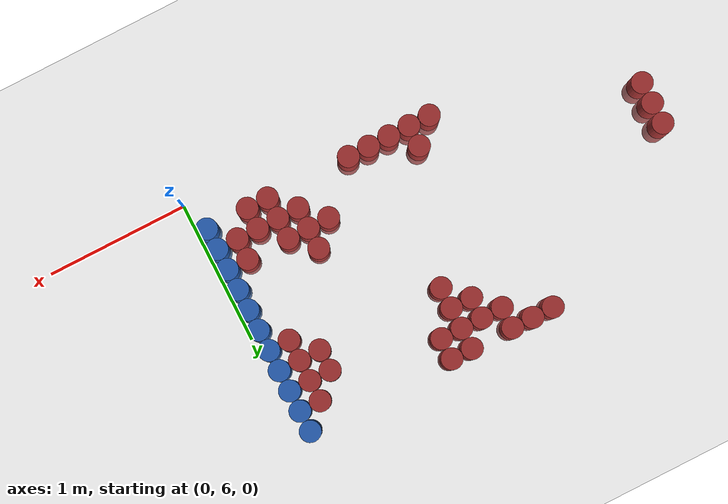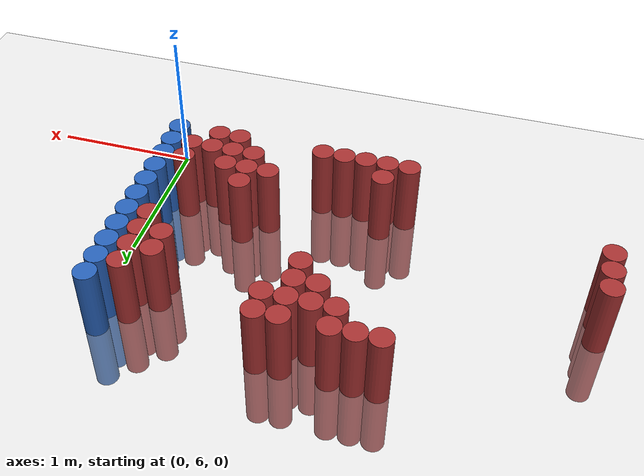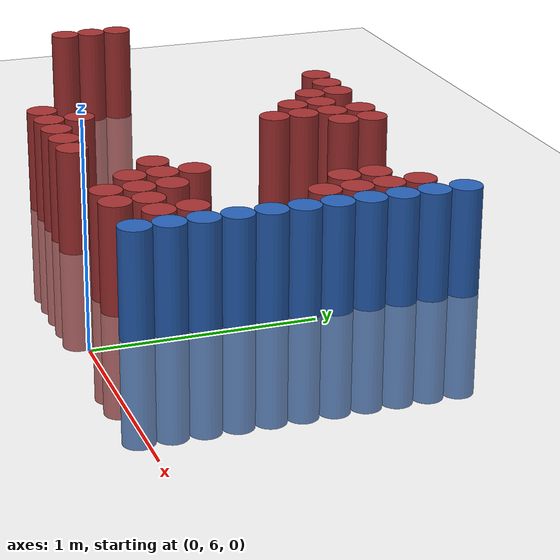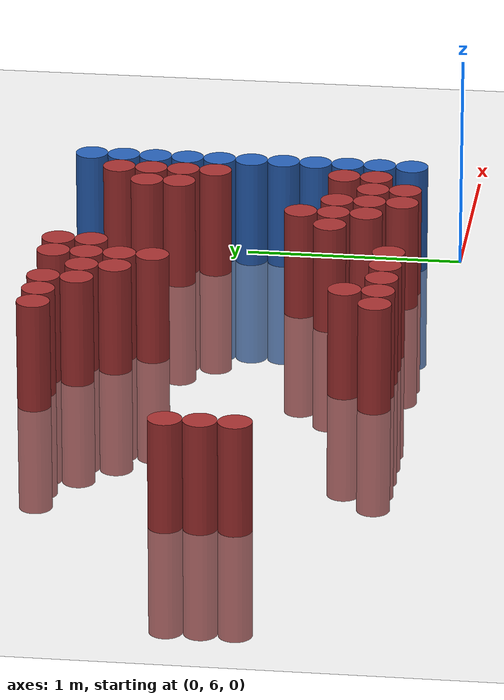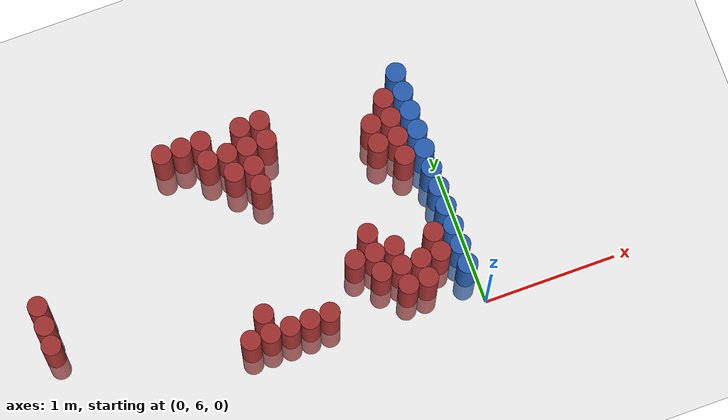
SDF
<sdf version="1.6">
 <world name="default">
  <model name="ground_plane">
   <static>1</static>
   <link name="link">
    <collision name="collision">
     <geometry><plane><normal>0 0 1</normal><size>100 100</size></plane></geometry>
     <surface><friction><ode><mu>100</mu><mu2>50</mu2></ode></friction></surface>
    </collision>
    <visual name="visual">
     <cast_shadows>0</cast_shadows>
     <geometry><plane><normal>0 0 1</normal><size>100 100</size></plane></geometry>
     <material>
      <script><uri>file://media/materials/scripts/gazebo.material</uri><name>Gazebo/Grey</name></script>
     </material>
    </visual>
   </link>
  </model>
  <model name="unit_cylinder_165">
   <static>1</static>
   <pose>-3.075000 6.675000 0.000000 0.000000 0.000000 0.000000</pose>
   <link name="link">
    <inertial>
     <mass>1</mass>
     <inertia><ixx>0.145833</ixx><ixy>0</ixy><ixz>0</ixz><iyy>0.145833</iyy><iyz>0</iyz><izz>0.125</izz></inertia>
    </inertial>
    <collision name="collision">
     <geometry><cylinder><radius>0.075000</radius><length>1</length></cylinder></geometry>
    </collision>
    <visual name="visual">
     <geometry><cylinder><radius>0.075000</radius><length>1</length></cylinder></geometry>
     <material>
      <ambient>0.648000 0.192000 0.192000 1</ambient>
      <diffuse>0.648000 0.192000 0.192000 1</diffuse>
     </material>
     <material>
      <script><name>Gazebo/Grey</name><uri>file://media/materials/scripts/gazebo.material</uri></script>
     </material>
    </visual>
   </link>
  </model>
  <model name="unit_cylinder_166">
   <static>1</static>
   <pose>-3.075000 6.825000 0.000000 0.000000 0.000000 0.000000</pose>
   <link name="link">
    <inertial>
     <mass>1</mass>
     <inertia><ixx>0.145833</ixx><ixy>0</ixy><ixz>0</ixz><iyy>0.145833</iyy><iyz>0</iyz><izz>0.125</izz></inertia>
    </inertial>
    <collision name="collision">
     <geometry><cylinder><radius>0.075000</radius><length>1</length></cylinder></geometry>
    </collision>
    <visual name="visual">
     <geometry><cylinder><radius>0.075000</radius><length>1</length></cylinder></geometry>
     <material>
      <ambient>0.648000 0.192000 0.192000 1</ambient>
      <diffuse>0.648000 0.192000 0.192000 1</diffuse>
     </material>
     <material>
      <script><name>Gazebo/Grey</name><uri>file://media/materials/scripts/gazebo.material</uri></script>
     </material>
    </visual>
   </link>
  </model>
  <model name="unit_cylinder_167">
   <static>1</static>
   <pose>-3.075000 6.975000 0.000000 0.000000 0.000000 0.000000</pose>
   <link name="link">
    <inertial>
     <mass>1</mass>
     <inertia><ixx>0.145833</ixx><ixy>0</ixy><ixz>0</ixz><iyy>0.145833</iyy><iyz>0</iyz><izz>0.125</izz></inertia>
    </inertial>
    <collision name="collision">
     <geometry><cylinder><radius>0.075000</radius><length>1</length></cylinder></geometry>
    </collision>
    <visual name="visual">
     <geometry><cylinder><radius>0.075000</radius><length>1</length></cylinder></geometry>
     <material>
      <ambient>0.648000 0.192000 0.192000 1</ambient>
      <diffuse>0.648000 0.192000 0.192000 1</diffuse>
     </material>
     <material>
      <script><name>Gazebo/Grey</name><uri>file://media/materials/scripts/gazebo.material</uri></script>
     </material>
    </visual>
   </link>
  </model>
  <model name="unit_cylinder_176">
   <static>1</static>
   <pose>-1.875000 7.725000 0.000000 0.000000 0.000000 0.000000</pose>
   <link name="link">
    <inertial>
     <mass>1</mass>
     <inertia><ixx>0.145833</ixx><ixy>0</ixy><ixz>0</ixz><iyy>0.145833</iyy><iyz>0</iyz><izz>0.125</izz></inertia>
    </inertial>
    <collision name="collision">
     <geometry><cylinder><radius>0.075000</radius><length>1</length></cylinder></geometry>
    </collision>
    <visual name="visual">
     <geometry><cylinder><radius>0.075000</radius><length>1</length></cylinder></geometry>
     <material>
      <ambient>0.648000 0.192000 0.192000 1</ambient>
      <diffuse>0.648000 0.192000 0.192000 1</diffuse>
     </material>
     <material>
      <script><name>Gazebo/Grey</name><uri>file://media/materials/scripts/gazebo.material</uri></script>
     </material>
    </visual>
   </link>
  </model>
  <model name="unit_cylinder_186">
   <static>1</static>
   <pose>-1.725000 6.225000 0.000000 0.000000 0.000000 0.000000</pose>
   <link name="link">
    <inertial>
     <mass>1</mass>
     <inertia><ixx>0.145833</ixx><ixy>0</ixy><ixz>0</ixz><iyy>0.145833</iyy><iyz>0</iyz><izz>0.125</izz></inertia>
    </inertial>
    <collision name="collision">
     <geometry><cylinder><radius>0.075000</radius><length>1</length></cylinder></geometry>
    </collision>
    <visual name="visual">
     <geometry><cylinder><radius>0.075000</radius><length>1</length></cylinder></geometry>
     <material>
      <ambient>0.648000 0.192000 0.192000 1</ambient>
      <diffuse>0.648000 0.192000 0.192000 1</diffuse>
     </material>
     <material>
      <script><name>Gazebo/Grey</name><uri>file://media/materials/scripts/gazebo.material</uri></script>
     </material>
    </visual>
   </link>
  </model>
  <model name="unit_cylinder_187">
   <static>1</static>
   <pose>-1.725000 7.725000 0.000000 0.000000 0.000000 0.000000</pose>
   <link name="link">
    <inertial>
     <mass>1</mass>
     <inertia><ixx>0.145833</ixx><ixy>0</ixy><ixz>0</ixz><iyy>0.145833</iyy><iyz>0</iyz><izz>0.125</izz></inertia>
    </inertial>
    <collision name="collision">
     <geometry><cylinder><radius>0.075000</radius><length>1</length></cylinder></geometry>
    </collision>
    <visual name="visual">
     <geometry><cylinder><radius>0.075000</radius><length>1</length></cylinder></geometry>
     <material>
      <ambient>0.648000 0.192000 0.192000 1</ambient>
      <diffuse>0.648000 0.192000 0.192000 1</diffuse>
     </material>
     <material>
      <script><name>Gazebo/Grey</name><uri>file://media/materials/scripts/gazebo.material</uri></script>
     </material>
    </visual>
   </link>
  </model>
  <model name="unit_cylinder_193">
   <static>1</static>
   <pose>-1.575000 6.225000 0.000000 0.000000 0.000000 0.000000</pose>
   <link name="link">
    <inertial>
     <mass>1</mass>
     <inertia><ixx>0.145833</ixx><ixy>0</ixy><ixz>0</ixz><iyy>0.145833</iyy><iyz>0</iyz><izz>0.125</izz></inertia>
    </inertial>
    <collision name="collision">
     <geometry><cylinder><radius>0.075000</radius><length>1</length></cylinder></geometry>
    </collision>
    <visual name="visual">
     <geometry><cylinder><radius>0.075000</radius><length>1</length></cylinder></geometry>
     <material>
      <ambient>0.648000 0.192000 0.192000 1</ambient>
      <diffuse>0.648000 0.192000 0.192000 1</diffuse>
     </material>
     <material>
      <script><name>Gazebo/Grey</name><uri>file://media/materials/scripts/gazebo.material</uri></script>
     </material>
    </visual>
   </link>
  </model>
  <model name="unit_cylinder_194">
   <static>1</static>
   <pose>-1.575000 6.375000 0.000000 0.000000 0.000000 0.000000</pose>
   <link name="link">
    <inertial>
     <mass>1</mass>
     <inertia><ixx>0.145833</ixx><ixy>0</ixy><ixz>0</ixz><iyy>0.145833</iyy><iyz>0</iyz><izz>0.125</izz></inertia>
    </inertial>
    <collision name="collision">
     <geometry><cylinder><radius>0.075000</radius><length>1</length></cylinder></geometry>
    </collision>
    <visual name="visual">
     <geometry><cylinder><radius>0.075000</radius><length>1</length></cylinder></geometry>
     <material>
      <ambient>0.648000 0.192000 0.192000 1</ambient>
      <diffuse>0.648000 0.192000 0.192000 1</diffuse>
     </material>
     <material>
      <script><name>Gazebo/Grey</name><uri>file://media/materials/scripts/gazebo.material</uri></script>
     </material>
    </visual>
   </link>
  </model>
  <model name="unit_cylinder_195">
   <static>1</static>
   <pose>-1.575000 7.575000 0.000000 0.000000 0.000000 0.000000</pose>
   <link name="link">
    <inertial>
     <mass>1</mass>
     <inertia><ixx>0.145833</ixx><ixy>0</ixy><ixz>0</ixz><iyy>0.145833</iyy><iyz>0</iyz><izz>0.125</izz></inertia>
    </inertial>
    <collision name="collision">
     <geometry><cylinder><radius>0.075000</radius><length>1</length></cylinder></geometry>
    </collision>
    <visual name="visual">
     <geometry><cylinder><radius>0.075000</radius><length>1</length></cylinder></geometry>
     <material>
      <ambient>0.648000 0.192000 0.192000 1</ambient>
      <diffuse>0.648000 0.192000 0.192000 1</diffuse>
     </material>
     <material>
      <script><name>Gazebo/Grey</name><uri>file://media/materials/scripts/gazebo.material</uri></script>
     </material>
    </visual>
   </link>
  </model>
  <model name="unit_cylinder_196">
   <static>1</static>
   <pose>-1.575000 7.725000 0.000000 0.000000 0.000000 0.000000</pose>
   <link name="link">
    <inertial>
     <mass>1</mass>
     <inertia><ixx>0.145833</ixx><ixy>0</ixy><ixz>0</ixz><iyy>0.145833</iyy><iyz>0</iyz><izz>0.125</izz></inertia>
    </inertial>
    <collision name="collision">
     <geometry><cylinder><radius>0.075000</radius><length>1</length></cylinder></geometry>
    </collision>
    <visual name="visual">
     <geometry><cylinder><radius>0.075000</radius><length>1</length></cylinder></geometry>
     <material>
      <ambient>0.648000 0.192000 0.192000 1</ambient>
      <diffuse>0.648000 0.192000 0.192000 1</diffuse>
     </material>
     <material>
      <script><name>Gazebo/Grey</name><uri>file://media/materials/scripts/gazebo.material</uri></script>
     </material>
    </visual>
   </link>
  </model>
  <model name="unit_cylinder_202">
   <static>1</static>
   <pose>-1.425000 6.225000 0.000000 0.000000 0.000000 0.000000</pose>
   <link name="link">
    <inertial>
     <mass>1</mass>
     <inertia><ixx>0.145833</ixx><ixy>0</ixy><ixz>0</ixz><iyy>0.145833</iyy><iyz>0</iyz><izz>0.125</izz></inertia>
    </inertial>
    <collision name="collision">
     <geometry><cylinder><radius>0.075000</radius><length>1</length></cylinder></geometry>
    </collision>
    <visual name="visual">
     <geometry><cylinder><radius>0.075000</radius><length>1</length></cylinder></geometry>
     <material>
      <ambient>0.648000 0.192000 0.192000 1</ambient>
      <diffuse>0.648000 0.192000 0.192000 1</diffuse>
     </material>
     <material>
      <script><name>Gazebo/Grey</name><uri>file://media/materials/scripts/gazebo.material</uri></script>
     </material>
    </visual>
   </link>
  </model>
  <model name="unit_cylinder_203">
   <static>1</static>
   <pose>-1.425000 7.425000 0.000000 0.000000 0.000000 0.000000</pose>
   <link name="link">
    <inertial>
     <mass>1</mass>
     <inertia><ixx>0.145833</ixx><ixy>0</ixy><ixz>0</ixz><iyy>0.145833</iyy><iyz>0</iyz><izz>0.125</izz></inertia>
    </inertial>
    <collision name="collision">
     <geometry><cylinder><radius>0.075000</radius><length>1</length></cylinder></geometry>
    </collision>
    <visual name="visual">
     <geometry><cylinder><radius>0.075000</radius><length>1</length></cylinder></geometry>
     <material>
      <ambient>0.648000 0.192000 0.192000 1</ambient>
      <diffuse>0.648000 0.192000 0.192000 1</diffuse>
     </material>
     <material>
      <script><name>Gazebo/Grey</name><uri>file://media/materials/scripts/gazebo.material</uri></script>
     </material>
    </visual>
   </link>
  </model>
  <model name="unit_cylinder_204">
   <static>1</static>
   <pose>-1.425000 7.575000 0.000000 0.000000 0.000000 0.000000</pose>
   <link name="link">
    <inertial>
     <mass>1</mass>
     <inertia><ixx>0.145833</ixx><ixy>0</ixy><ixz>0</ixz><iyy>0.145833</iyy><iyz>0</iyz><izz>0.125</izz></inertia>
    </inertial>
    <collision name="collision">
     <geometry><cylinder><radius>0.075000</radius><length>1</length></cylinder></geometry>
    </collision>
    <visual name="visual">
     <geometry><cylinder><radius>0.075000</radius><length>1</length></cylinder></geometry>
     <material>
      <ambient>0.648000 0.192000 0.192000 1</ambient>
      <diffuse>0.648000 0.192000 0.192000 1</diffuse>
     </material>
     <material>
      <script><name>Gazebo/Grey</name><uri>file://media/materials/scripts/gazebo.material</uri></script>
     </material>
    </visual>
   </link>
  </model>
  <model name="unit_cylinder_212">
   <static>1</static>
   <pose>-1.275000 6.225000 0.000000 0.000000 0.000000 0.000000</pose>
   <link name="link">
    <inertial>
     <mass>1</mass>
     <inertia><ixx>0.145833</ixx><ixy>0</ixy><ixz>0</ixz><iyy>0.145833</iyy><iyz>0</iyz><izz>0.125</izz></inertia>
    </inertial>
    <collision name="collision">
     <geometry><cylinder><radius>0.075000</radius><length>1</length></cylinder></geometry>
    </collision>
    <visual name="visual">
     <geometry><cylinder><radius>0.075000</radius><length>1</length></cylinder></geometry>
     <material>
      <ambient>0.648000 0.192000 0.192000 1</ambient>
      <diffuse>0.648000 0.192000 0.192000 1</diffuse>
     </material>
     <material>
      <script><name>Gazebo/Grey</name><uri>file://media/materials/scripts/gazebo.material</uri></script>
     </material>
    </visual>
   </link>
  </model>
  <model name="unit_cylinder_213">
   <static>1</static>
   <pose>-1.275000 7.275000 0.000000 0.000000 0.000000 0.000000</pose>
   <link name="link">
    <inertial>
     <mass>1</mass>
     <inertia><ixx>0.145833</ixx><ixy>0</ixy><ixz>0</ixz><iyy>0.145833</iyy><iyz>0</iyz><izz>0.125</izz></inertia>
    </inertial>
    <collision name="collision">
     <geometry><cylinder><radius>0.075000</radius><length>1</length></cylinder></geometry>
    </collision>
    <visual name="visual">
     <geometry><cylinder><radius>0.075000</radius><length>1</length></cylinder></geometry>
     <material>
      <ambient>0.648000 0.192000 0.192000 1</ambient>
      <diffuse>0.648000 0.192000 0.192000 1</diffuse>
     </material>
     <material>
      <script><name>Gazebo/Grey</name><uri>file://media/materials/scripts/gazebo.material</uri></script>
     </material>
    </visual>
   </link>
  </model>
  <model name="unit_cylinder_214">
   <static>1</static>
   <pose>-1.275000 7.425000 0.000000 0.000000 0.000000 0.000000</pose>
   <link name="link">
    <inertial>
     <mass>1</mass>
     <inertia><ixx>0.145833</ixx><ixy>0</ixy><ixz>0</ixz><iyy>0.145833</iyy><iyz>0</iyz><izz>0.125</izz></inertia>
    </inertial>
    <collision name="collision">
     <geometry><cylinder><radius>0.075000</radius><length>1</length></cylinder></geometry>
    </collision>
    <visual name="visual">
     <geometry><cylinder><radius>0.075000</radius><length>1</length></cylinder></geometry>
     <material>
      <ambient>0.648000 0.192000 0.192000 1</ambient>
      <diffuse>0.648000 0.192000 0.192000 1</diffuse>
     </material>
     <material>
      <script><name>Gazebo/Grey</name><uri>file://media/materials/scripts/gazebo.material</uri></script>
     </material>
    </visual>
   </link>
  </model>
  <model name="unit_cylinder_215">
   <static>1</static>
   <pose>-1.275000 7.575000 0.000000 0.000000 0.000000 0.000000</pose>
   <link name="link">
    <inertial>
     <mass>1</mass>
     <inertia><ixx>0.145833</ixx><ixy>0</ixy><ixz>0</ixz><iyy>0.145833</iyy><iyz>0</iyz><izz>0.125</izz></inertia>
    </inertial>
    <collision name="collision">
     <geometry><cylinder><radius>0.075000</radius><length>1</length></cylinder></geometry>
    </collision>
    <visual name="visual">
     <geometry><cylinder><radius>0.075000</radius><length>1</length></cylinder></geometry>
     <material>
      <ambient>0.648000 0.192000 0.192000 1</ambient>
      <diffuse>0.648000 0.192000 0.192000 1</diffuse>
     </material>
     <material>
      <script><name>Gazebo/Grey</name><uri>file://media/materials/scripts/gazebo.material</uri></script>
     </material>
    </visual>
   </link>
  </model>
  <model name="unit_cylinder_216">
   <static>1</static>
   <pose>-1.275000 7.725000 0.000000 0.000000 0.000000 0.000000</pose>
   <link name="link">
    <inertial>
     <mass>1</mass>
     <inertia><ixx>0.145833</ixx><ixy>0</ixy><ixz>0</ixz><iyy>0.145833</iyy><iyz>0</iyz><izz>0.125</izz></inertia>
    </inertial>
    <collision name="collision">
     <geometry><cylinder><radius>0.075000</radius><length>1</length></cylinder></geometry>
    </collision>
    <visual name="visual">
     <geometry><cylinder><radius>0.075000</radius><length>1</length></cylinder></geometry>
     <material>
      <ambient>0.648000 0.192000 0.192000 1</ambient>
      <diffuse>0.648000 0.192000 0.192000 1</diffuse>
     </material>
     <material>
      <script><name>Gazebo/Grey</name><uri>file://media/materials/scripts/gazebo.material</uri></script>
     </material>
    </visual>
   </link>
  </model>
  <model name="unit_cylinder_224">
   <static>1</static>
   <pose>-1.125000 6.225000 0.000000 0.000000 0.000000 0.000000</pose>
   <link name="link">
    <inertial>
     <mass>1</mass>
     <inertia><ixx>0.145833</ixx><ixy>0</ixy><ixz>0</ixz><iyy>0.145833</iyy><iyz>0</iyz><izz>0.125</izz></inertia>
    </inertial>
    <collision name="collision">
     <geometry><cylinder><radius>0.075000</radius><length>1</length></cylinder></geometry>
    </collision>
    <visual name="visual">
     <geometry><cylinder><radius>0.075000</radius><length>1</length></cylinder></geometry>
     <material>
      <ambient>0.648000 0.192000 0.192000 1</ambient>
      <diffuse>0.648000 0.192000 0.192000 1</diffuse>
     </material>
     <material>
      <script><name>Gazebo/Grey</name><uri>file://media/materials/scripts/gazebo.material</uri></script>
     </material>
    </visual>
   </link>
  </model>
  <model name="unit_cylinder_225">
   <static>1</static>
   <pose>-1.125000 7.575000 0.000000 0.000000 0.000000 0.000000</pose>
   <link name="link">
    <inertial>
     <mass>1</mass>
     <inertia><ixx>0.145833</ixx><ixy>0</ixy><ixz>0</ixz><iyy>0.145833</iyy><iyz>0</iyz><izz>0.125</izz></inertia>
    </inertial>
    <collision name="collision">
     <geometry><cylinder><radius>0.075000</radius><length>1</length></cylinder></geometry>
    </collision>
    <visual name="visual">
     <geometry><cylinder><radius>0.075000</radius><length>1</length></cylinder></geometry>
     <material>
      <ambient>0.648000 0.192000 0.192000 1</ambient>
      <diffuse>0.648000 0.192000 0.192000 1</diffuse>
     </material>
     <material>
      <script><name>Gazebo/Grey</name><uri>file://media/materials/scripts/gazebo.material</uri></script>
     </material>
    </visual>
   </link>
  </model>
  <model name="unit_cylinder_226">
   <static>1</static>
   <pose>-1.125000 7.725000 0.000000 0.000000 0.000000 0.000000</pose>
   <link name="link">
    <inertial>
     <mass>1</mass>
     <inertia><ixx>0.145833</ixx><ixy>0</ixy><ixz>0</ixz><iyy>0.145833</iyy><iyz>0</iyz><izz>0.125</izz></inertia>
    </inertial>
    <collision name="collision">
     <geometry><cylinder><radius>0.075000</radius><length>1</length></cylinder></geometry>
    </collision>
    <visual name="visual">
     <geometry><cylinder><radius>0.075000</radius><length>1</length></cylinder></geometry>
     <material>
      <ambient>0.648000 0.192000 0.192000 1</ambient>
      <diffuse>0.648000 0.192000 0.192000 1</diffuse>
     </material>
     <material>
      <script><name>Gazebo/Grey</name><uri>file://media/materials/scripts/gazebo.material</uri></script>
     </material>
    </visual>
   </link>
  </model>
  <model name="unit_cylinder_231">
   <static>1</static>
   <pose>-0.825000 6.525000 0.000000 0.000000 0.000000 0.000000</pose>
   <link name="link">
    <inertial>
     <mass>1</mass>
     <inertia><ixx>0.145833</ixx><ixy>0</ixy><ixz>0</ixz><iyy>0.145833</iyy><iyz>0</iyz><izz>0.125</izz></inertia>
    </inertial>
    <collision name="collision">
     <geometry><cylinder><radius>0.075000</radius><length>1</length></cylinder></geometry>
    </collision>
    <visual name="visual">
     <geometry><cylinder><radius>0.075000</radius><length>1</length></cylinder></geometry>
     <material>
      <ambient>0.648000 0.192000 0.192000 1</ambient>
      <diffuse>0.648000 0.192000 0.192000 1</diffuse>
     </material>
     <material>
      <script><name>Gazebo/Grey</name><uri>file://media/materials/scripts/gazebo.material</uri></script>
     </material>
    </visual>
   </link>
  </model>
  <model name="unit_cylinder_234">
   <static>1</static>
   <pose>-0.675000 6.375000 0.000000 0.000000 0.000000 0.000000</pose>
   <link name="link">
    <inertial>
     <mass>1</mass>
     <inertia><ixx>0.145833</ixx><ixy>0</ixy><ixz>0</ixz><iyy>0.145833</iyy><iyz>0</iyz><izz>0.125</izz></inertia>
    </inertial>
    <collision name="collision">
     <geometry><cylinder><radius>0.075000</radius><length>1</length></cylinder></geometry>
    </collision>
    <visual name="visual">
     <geometry><cylinder><radius>0.075000</radius><length>1</length></cylinder></geometry>
     <material>
      <ambient>0.648000 0.192000 0.192000 1</ambient>
      <diffuse>0.648000 0.192000 0.192000 1</diffuse>
     </material>
     <material>
      <script><name>Gazebo/Grey</name><uri>file://media/materials/scripts/gazebo.material</uri></script>
     </material>
    </visual>
   </link>
  </model>
  <model name="unit_cylinder_235">
   <static>1</static>
   <pose>-0.675000 6.525000 0.000000 0.000000 0.000000 0.000000</pose>
   <link name="link">
    <inertial>
     <mass>1</mass>
     <inertia><ixx>0.145833</ixx><ixy>0</ixy><ixz>0</ixz><iyy>0.145833</iyy><iyz>0</iyz><izz>0.125</izz></inertia>
    </inertial>
    <collision name="collision">
     <geometry><cylinder><radius>0.075000</radius><length>1</length></cylinder></geometry>
    </collision>
    <visual name="visual">
     <geometry><cylinder><radius>0.075000</radius><length>1</length></cylinder></geometry>
     <material>
      <ambient>0.648000 0.192000 0.192000 1</ambient>
      <diffuse>0.648000 0.192000 0.192000 1</diffuse>
     </material>
     <material>
      <script><name>Gazebo/Grey</name><uri>file://media/materials/scripts/gazebo.material</uri></script>
     </material>
    </visual>
   </link>
  </model>
  <model name="unit_cylinder_236">
   <static>1</static>
   <pose>-0.675000 6.675000 0.000000 0.000000 0.000000 0.000000</pose>
   <link name="link">
    <inertial>
     <mass>1</mass>
     <inertia><ixx>0.145833</ixx><ixy>0</ixy><ixz>0</ixz><iyy>0.145833</iyy><iyz>0</iyz><izz>0.125</izz></inertia>
    </inertial>
    <collision name="collision">
     <geometry><cylinder><radius>0.075000</radius><length>1</length></cylinder></geometry>
    </collision>
    <visual name="visual">
     <geometry><cylinder><radius>0.075000</radius><length>1</length></cylinder></geometry>
     <material>
      <ambient>0.648000 0.192000 0.192000 1</ambient>
      <diffuse>0.648000 0.192000 0.192000 1</diffuse>
     </material>
     <material>
      <script><name>Gazebo/Grey</name><uri>file://media/materials/scripts/gazebo.material</uri></script>
     </material>
    </visual>
   </link>
  </model>
  <model name="unit_cylinder_237">
   <static>1</static>
   <pose>-0.525000 6.225000 0.000000 0.000000 0.000000 0.000000</pose>
   <link name="link">
    <inertial>
     <mass>1</mass>
     <inertia><ixx>0.145833</ixx><ixy>0</ixy><ixz>0</ixz><iyy>0.145833</iyy><iyz>0</iyz><izz>0.125</izz></inertia>
    </inertial>
    <collision name="collision">
     <geometry><cylinder><radius>0.075000</radius><length>1</length></cylinder></geometry>
    </collision>
    <visual name="visual">
     <geometry><cylinder><radius>0.075000</radius><length>1</length></cylinder></geometry>
     <material>
      <ambient>0.648000 0.192000 0.192000 1</ambient>
      <diffuse>0.648000 0.192000 0.192000 1</diffuse>
     </material>
     <material>
      <script><name>Gazebo/Grey</name><uri>file://media/materials/scripts/gazebo.material</uri></script>
     </material>
    </visual>
   </link>
  </model>
  <model name="unit_cylinder_238">
   <static>1</static>
   <pose>-0.525000 6.375000 0.000000 0.000000 0.000000 0.000000</pose>
   <link name="link">
    <inertial>
     <mass>1</mass>
     <inertia><ixx>0.145833</ixx><ixy>0</ixy><ixz>0</ixz><iyy>0.145833</iyy><iyz>0</iyz><izz>0.125</izz></inertia>
    </inertial>
    <collision name="collision">
     <geometry><cylinder><radius>0.075000</radius><length>1</length></cylinder></geometry>
    </collision>
    <visual name="visual">
     <geometry><cylinder><radius>0.075000</radius><length>1</length></cylinder></geometry>
     <material>
      <ambient>0.648000 0.192000 0.192000 1</ambient>
      <diffuse>0.648000 0.192000 0.192000 1</diffuse>
     </material>
     <material>
      <script><name>Gazebo/Grey</name><uri>file://media/materials/scripts/gazebo.material</uri></script>
     </material>
    </visual>
   </link>
  </model>
  <model name="unit_cylinder_239">
   <static>1</static>
   <pose>-0.525000 6.525000 0.000000 0.000000 0.000000 0.000000</pose>
   <link name="link">
    <inertial>
     <mass>1</mass>
     <inertia><ixx>0.145833</ixx><ixy>0</ixy><ixz>0</ixz><iyy>0.145833</iyy><iyz>0</iyz><izz>0.125</izz></inertia>
    </inertial>
    <collision name="collision">
     <geometry><cylinder><radius>0.075000</radius><length>1</length></cylinder></geometry>
    </collision>
    <visual name="visual">
     <geometry><cylinder><radius>0.075000</radius><length>1</length></cylinder></geometry>
     <material>
      <ambient>0.648000 0.192000 0.192000 1</ambient>
      <diffuse>0.648000 0.192000 0.192000 1</diffuse>
     </material>
     <material>
      <script><name>Gazebo/Grey</name><uri>file://media/materials/scripts/gazebo.material</uri></script>
     </material>
    </visual>
   </link>
  </model>
  <model name="unit_cylinder_243">
   <static>1</static>
   <pose>-0.375000 6.225000 0.000000 0.000000 0.000000 0.000000</pose>
   <link name="link">
    <inertial>
     <mass>1</mass>
     <inertia><ixx>0.145833</ixx><ixy>0</ixy><ixz>0</ixz><iyy>0.145833</iyy><iyz>0</iyz><izz>0.125</izz></inertia>
    </inertial>
    <collision name="collision">
     <geometry><cylinder><radius>0.075000</radius><length>1</length></cylinder></geometry>
    </collision>
    <visual name="visual">
     <geometry><cylinder><radius>0.075000</radius><length>1</length></cylinder></geometry>
     <material>
      <ambient>0.648000 0.192000 0.192000 1</ambient>
      <diffuse>0.648000 0.192000 0.192000 1</diffuse>
     </material>
     <material>
      <script><name>Gazebo/Grey</name><uri>file://media/materials/scripts/gazebo.material</uri></script>
     </material>
    </visual>
   </link>
  </model>
  <model name="unit_cylinder_244">
   <static>1</static>
   <pose>-0.375000 6.375000 0.000000 0.000000 0.000000 0.000000</pose>
   <link name="link">
    <inertial>
     <mass>1</mass>
     <inertia><ixx>0.145833</ixx><ixy>0</ixy><ixz>0</ixz><iyy>0.145833</iyy><iyz>0</iyz><izz>0.125</izz></inertia>
    </inertial>
    <collision name="collision">
     <geometry><cylinder><radius>0.075000</radius><length>1</length></cylinder></geometry>
    </collision>
    <visual name="visual">
     <geometry><cylinder><radius>0.075000</radius><length>1</length></cylinder></geometry>
     <material>
      <ambient>0.648000 0.192000 0.192000 1</ambient>
      <diffuse>0.648000 0.192000 0.192000 1</diffuse>
     </material>
     <material>
      <script><name>Gazebo/Grey</name><uri>file://media/materials/scripts/gazebo.material</uri></script>
     </material>
    </visual>
   </link>
  </model>
  <model name="unit_cylinder_245">
   <static>1</static>
   <pose>-0.375000 7.275000 0.000000 0.000000 0.000000 0.000000</pose>
   <link name="link">
    <inertial>
     <mass>1</mass>
     <inertia><ixx>0.145833</ixx><ixy>0</ixy><ixz>0</ixz><iyy>0.145833</iyy><iyz>0</iyz><izz>0.125</izz></inertia>
    </inertial>
    <collision name="collision">
     <geometry><cylinder><radius>0.075000</radius><length>1</length></cylinder></geometry>
    </collision>
    <visual name="visual">
     <geometry><cylinder><radius>0.075000</radius><length>1</length></cylinder></geometry>
     <material>
      <ambient>0.648000 0.192000 0.192000 1</ambient>
      <diffuse>0.648000 0.192000 0.192000 1</diffuse>
     </material>
     <material>
      <script><name>Gazebo/Grey</name><uri>file://media/materials/scripts/gazebo.material</uri></script>
     </material>
    </visual>
   </link>
  </model>
  <model name="unit_cylinder_246">
   <static>1</static>
   <pose>-0.375000 7.425000 0.000000 0.000000 0.000000 0.000000</pose>
   <link name="link">
    <inertial>
     <mass>1</mass>
     <inertia><ixx>0.145833</ixx><ixy>0</ixy><ixz>0</ixz><iyy>0.145833</iyy><iyz>0</iyz><izz>0.125</izz></inertia>
    </inertial>
    <collision name="collision">
     <geometry><cylinder><radius>0.075000</radius><length>1</length></cylinder></geometry>
    </collision>
    <visual name="visual">
     <geometry><cylinder><radius>0.075000</radius><length>1</length></cylinder></geometry>
     <material>
      <ambient>0.648000 0.192000 0.192000 1</ambient>
      <diffuse>0.648000 0.192000 0.192000 1</diffuse>
     </material>
     <material>
      <script><name>Gazebo/Grey</name><uri>file://media/materials/scripts/gazebo.material</uri></script>
     </material>
    </visual>
   </link>
  </model>
  <model name="unit_cylinder_252">
   <static>1</static>
   <pose>-0.225000 6.375000 0.000000 0.000000 0.000000 0.000000</pose>
   <link name="link">
    <inertial>
     <mass>1</mass>
     <inertia><ixx>0.145833</ixx><ixy>0</ixy><ixz>0</ixz><iyy>0.145833</iyy><iyz>0</iyz><izz>0.125</izz></inertia>
    </inertial>
    <collision name="collision">
     <geometry><cylinder><radius>0.075000</radius><length>1</length></cylinder></geometry>
    </collision>
    <visual name="visual">
     <geometry><cylinder><radius>0.075000</radius><length>1</length></cylinder></geometry>
     <material>
      <ambient>0.648000 0.192000 0.192000 1</ambient>
      <diffuse>0.648000 0.192000 0.192000 1</diffuse>
     </material>
     <material>
      <script><name>Gazebo/Grey</name><uri>file://media/materials/scripts/gazebo.material</uri></script>
     </material>
    </visual>
   </link>
  </model>
  <model name="unit_cylinder_253">
   <static>1</static>
   <pose>-0.225000 6.525000 0.000000 0.000000 0.000000 0.000000</pose>
   <link name="link">
    <inertial>
     <mass>1</mass>
     <inertia><ixx>0.145833</ixx><ixy>0</ixy><ixz>0</ixz><iyy>0.145833</iyy><iyz>0</iyz><izz>0.125</izz></inertia>
    </inertial>
    <collision name="collision">
     <geometry><cylinder><radius>0.075000</radius><length>1</length></cylinder></geometry>
    </collision>
    <visual name="visual">
     <geometry><cylinder><radius>0.075000</radius><length>1</length></cylinder></geometry>
     <material>
      <ambient>0.648000 0.192000 0.192000 1</ambient>
      <diffuse>0.648000 0.192000 0.192000 1</diffuse>
     </material>
     <material>
      <script><name>Gazebo/Grey</name><uri>file://media/materials/scripts/gazebo.material</uri></script>
     </material>
    </visual>
   </link>
  </model>
  <model name="unit_cylinder_254">
   <static>1</static>
   <pose>-0.225000 7.125000 0.000000 0.000000 0.000000 0.000000</pose>
   <link name="link">
    <inertial>
     <mass>1</mass>
     <inertia><ixx>0.145833</ixx><ixy>0</ixy><ixz>0</ixz><iyy>0.145833</iyy><iyz>0</iyz><izz>0.125</izz></inertia>
    </inertial>
    <collision name="collision">
     <geometry><cylinder><radius>0.075000</radius><length>1</length></cylinder></geometry>
    </collision>
    <visual name="visual">
     <geometry><cylinder><radius>0.075000</radius><length>1</length></cylinder></geometry>
     <material>
      <ambient>0.648000 0.192000 0.192000 1</ambient>
      <diffuse>0.648000 0.192000 0.192000 1</diffuse>
     </material>
     <material>
      <script><name>Gazebo/Grey</name><uri>file://media/materials/scripts/gazebo.material</uri></script>
     </material>
    </visual>
   </link>
  </model>
  <model name="unit_cylinder_255">
   <static>1</static>
   <pose>-0.225000 7.275000 0.000000 0.000000 0.000000 0.000000</pose>
   <link name="link">
    <inertial>
     <mass>1</mass>
     <inertia><ixx>0.145833</ixx><ixy>0</ixy><ixz>0</ixz><iyy>0.145833</iyy><iyz>0</iyz><izz>0.125</izz></inertia>
    </inertial>
    <collision name="collision">
     <geometry><cylinder><radius>0.075000</radius><length>1</length></cylinder></geometry>
    </collision>
    <visual name="visual">
     <geometry><cylinder><radius>0.075000</radius><length>1</length></cylinder></geometry>
     <material>
      <ambient>0.648000 0.192000 0.192000 1</ambient>
      <diffuse>0.648000 0.192000 0.192000 1</diffuse>
     </material>
     <material>
      <script><name>Gazebo/Grey</name><uri>file://media/materials/scripts/gazebo.material</uri></script>
     </material>
    </visual>
   </link>
  </model>
  <model name="unit_cylinder_256">
   <static>1</static>
   <pose>-0.225000 7.425000 0.000000 0.000000 0.000000 0.000000</pose>
   <link name="link">
    <inertial>
     <mass>1</mass>
     <inertia><ixx>0.145833</ixx><ixy>0</ixy><ixz>0</ixz><iyy>0.145833</iyy><iyz>0</iyz><izz>0.125</izz></inertia>
    </inertial>
    <collision name="collision">
     <geometry><cylinder><radius>0.075000</radius><length>1</length></cylinder></geometry>
    </collision>
    <visual name="visual">
     <geometry><cylinder><radius>0.075000</radius><length>1</length></cylinder></geometry>
     <material>
      <ambient>0.648000 0.192000 0.192000 1</ambient>
      <diffuse>0.648000 0.192000 0.192000 1</diffuse>
     </material>
     <material>
      <script><name>Gazebo/Grey</name><uri>file://media/materials/scripts/gazebo.material</uri></script>
     </material>
    </visual>
   </link>
  </model>
  <model name="unit_cylinder_257">
   <static>1</static>
   <pose>-0.225000 7.575000 0.000000 0.000000 0.000000 0.000000</pose>
   <link name="link">
    <inertial>
     <mass>1</mass>
     <inertia><ixx>0.145833</ixx><ixy>0</ixy><ixz>0</ixz><iyy>0.145833</iyy><iyz>0</iyz><izz>0.125</izz></inertia>
    </inertial>
    <collision name="collision">
     <geometry><cylinder><radius>0.075000</radius><length>1</length></cylinder></geometry>
    </collision>
    <visual name="visual">
     <geometry><cylinder><radius>0.075000</radius><length>1</length></cylinder></geometry>
     <material>
      <ambient>0.648000 0.192000 0.192000 1</ambient>
      <diffuse>0.648000 0.192000 0.192000 1</diffuse>
     </material>
     <material>
      <script><name>Gazebo/Grey</name><uri>file://media/materials/scripts/gazebo.material</uri></script>
     </material>
    </visual>
   </link>
  </model>
  <model name="unit_cylinder_271">
   <static>1</static>
   <pose>-0.075000 6.225000 0.000000 0.000000 0.000000 0.000000</pose>
   <link name="link">
    <inertial>
     <mass>1</mass>
     <inertia><ixx>0.145833</ixx><ixy>0</ixy><ixz>0</ixz><iyy>0.145833</iyy><iyz>0</iyz><izz>0.125</izz></inertia>
    </inertial>
    <collision name="collision">
     <geometry><cylinder><radius>0.075000</radius><length>1</length></cylinder></geometry>
    </collision>
    <visual name="visual">
     <geometry><cylinder><radius>0.075000</radius><length>1</length></cylinder></geometry>
     <material>
      <ambient>0.152000 0.379000 0.720000 1</ambient>
      <diffuse>0.152000 0.379000 0.720000 1</diffuse>
     </material>
     <material>
      <script><name>Gazebo/Grey</name><uri>file://media/materials/scripts/gazebo.material</uri></script>
     </material>
    </visual>
   </link>
  </model>
  <model name="unit_cylinder_272">
   <static>1</static>
   <pose>-0.075000 6.375000 0.000000 0.000000 0.000000 0.000000</pose>
   <link name="link">
    <inertial>
     <mass>1</mass>
     <inertia><ixx>0.145833</ixx><ixy>0</ixy><ixz>0</ixz><iyy>0.145833</iyy><iyz>0</iyz><izz>0.125</izz></inertia>
    </inertial>
    <collision name="collision">
     <geometry><cylinder><radius>0.075000</radius><length>1</length></cylinder></geometry>
    </collision>
    <visual name="visual">
     <geometry><cylinder><radius>0.075000</radius><length>1</length></cylinder></geometry>
     <material>
      <ambient>0.152000 0.379000 0.720000 1</ambient>
      <diffuse>0.152000 0.379000 0.720000 1</diffuse>
     </material>
     <material>
      <script><name>Gazebo/Grey</name><uri>file://media/materials/scripts/gazebo.material</uri></script>
     </material>
    </visual>
   </link>
  </model>
  <model name="unit_cylinder_273">
   <static>1</static>
   <pose>-0.075000 6.525000 0.000000 0.000000 0.000000 0.000000</pose>
   <link name="link">
    <inertial>
     <mass>1</mass>
     <inertia><ixx>0.145833</ixx><ixy>0</ixy><ixz>0</ixz><iyy>0.145833</iyy><iyz>0</iyz><izz>0.125</izz></inertia>
    </inertial>
    <collision name="collision">
     <geometry><cylinder><radius>0.075000</radius><length>1</length></cylinder></geometry>
    </collision>
    <visual name="visual">
     <geometry><cylinder><radius>0.075000</radius><length>1</length></cylinder></geometry>
     <material>
      <ambient>0.152000 0.379000 0.720000 1</ambient>
      <diffuse>0.152000 0.379000 0.720000 1</diffuse>
     </material>
     <material>
      <script><name>Gazebo/Grey</name><uri>file://media/materials/scripts/gazebo.material</uri></script>
     </material>
    </visual>
   </link>
  </model>
  <model name="unit_cylinder_274">
   <static>1</static>
   <pose>-0.075000 6.675000 0.000000 0.000000 0.000000 0.000000</pose>
   <link name="link">
    <inertial>
     <mass>1</mass>
     <inertia><ixx>0.145833</ixx><ixy>0</ixy><ixz>0</ixz><iyy>0.145833</iyy><iyz>0</iyz><izz>0.125</izz></inertia>
    </inertial>
    <collision name="collision">
     <geometry><cylinder><radius>0.075000</radius><length>1</length></cylinder></geometry>
    </collision>
    <visual name="visual">
     <geometry><cylinder><radius>0.075000</radius><length>1</length></cylinder></geometry>
     <material>
      <ambient>0.152000 0.379000 0.720000 1</ambient>
      <diffuse>0.152000 0.379000 0.720000 1</diffuse>
     </material>
     <material>
      <script><name>Gazebo/Grey</name><uri>file://media/materials/scripts/gazebo.material</uri></script>
     </material>
    </visual>
   </link>
  </model>
  <model name="unit_cylinder_275">
   <static>1</static>
   <pose>-0.075000 6.825000 0.000000 0.000000 0.000000 0.000000</pose>
   <link name="link">
    <inertial>
     <mass>1</mass>
     <inertia><ixx>0.145833</ixx><ixy>0</ixy><ixz>0</ixz><iyy>0.145833</iyy><iyz>0</iyz><izz>0.125</izz></inertia>
    </inertial>
    <collision name="collision">
     <geometry><cylinder><radius>0.075000</radius><length>1</length></cylinder></geometry>
    </collision>
    <visual name="visual">
     <geometry><cylinder><radius>0.075000</radius><length>1</length></cylinder></geometry>
     <material>
      <ambient>0.152000 0.379000 0.720000 1</ambient>
      <diffuse>0.152000 0.379000 0.720000 1</diffuse>
     </material>
     <material>
      <script><name>Gazebo/Grey</name><uri>file://media/materials/scripts/gazebo.material</uri></script>
     </material>
    </visual>
   </link>
  </model>
  <model name="unit_cylinder_276">
   <static>1</static>
   <pose>-0.075000 6.975000 0.000000 0.000000 0.000000 0.000000</pose>
   <link name="link">
    <inertial>
     <mass>1</mass>
     <inertia><ixx>0.145833</ixx><ixy>0</ixy><ixz>0</ixz><iyy>0.145833</iyy><iyz>0</iyz><izz>0.125</izz></inertia>
    </inertial>
    <collision name="collision">
     <geometry><cylinder><radius>0.075000</radius><length>1</length></cylinder></geometry>
    </collision>
    <visual name="visual">
     <geometry><cylinder><radius>0.075000</radius><length>1</length></cylinder></geometry>
     <material>
      <ambient>0.152000 0.379000 0.720000 1</ambient>
      <diffuse>0.152000 0.379000 0.720000 1</diffuse>
     </material>
     <material>
      <script><name>Gazebo/Grey</name><uri>file://media/materials/scripts/gazebo.material</uri></script>
     </material>
    </visual>
   </link>
  </model>
  <model name="unit_cylinder_277">
   <static>1</static>
   <pose>-0.075000 7.125000 0.000000 0.000000 0.000000 0.000000</pose>
   <link name="link">
    <inertial>
     <mass>1</mass>
     <inertia><ixx>0.145833</ixx><ixy>0</ixy><ixz>0</ixz><iyy>0.145833</iyy><iyz>0</iyz><izz>0.125</izz></inertia>
    </inertial>
    <collision name="collision">
     <geometry><cylinder><radius>0.075000</radius><length>1</length></cylinder></geometry>
    </collision>
    <visual name="visual">
     <geometry><cylinder><radius>0.075000</radius><length>1</length></cylinder></geometry>
     <material>
      <ambient>0.152000 0.379000 0.720000 1</ambient>
      <diffuse>0.152000 0.379000 0.720000 1</diffuse>
     </material>
     <material>
      <script><name>Gazebo/Grey</name><uri>file://media/materials/scripts/gazebo.material</uri></script>
     </material>
    </visual>
   </link>
  </model>
  <model name="unit_cylinder_278">
   <static>1</static>
   <pose>-0.075000 7.275000 0.000000 0.000000 0.000000 0.000000</pose>
   <link name="link">
    <inertial>
     <mass>1</mass>
     <inertia><ixx>0.145833</ixx><ixy>0</ixy><ixz>0</ixz><iyy>0.145833</iyy><iyz>0</iyz><izz>0.125</izz></inertia>
    </inertial>
    <collision name="collision">
     <geometry><cylinder><radius>0.075000</radius><length>1</length></cylinder></geometry>
    </collision>
    <visual name="visual">
     <geometry><cylinder><radius>0.075000</radius><length>1</length></cylinder></geometry>
     <material>
      <ambient>0.152000 0.379000 0.720000 1</ambient>
      <diffuse>0.152000 0.379000 0.720000 1</diffuse>
     </material>
     <material>
      <script><name>Gazebo/Grey</name><uri>file://media/materials/scripts/gazebo.material</uri></script>
     </material>
    </visual>
   </link>
  </model>
  <model name="unit_cylinder_279">
   <static>1</static>
   <pose>-0.075000 7.425000 0.000000 0.000000 0.000000 0.000000</pose>
   <link name="link">
    <inertial>
     <mass>1</mass>
     <inertia><ixx>0.145833</ixx><ixy>0</ixy><ixz>0</ixz><iyy>0.145833</iyy><iyz>0</iyz><izz>0.125</izz></inertia>
    </inertial>
    <collision name="collision">
     <geometry><cylinder><radius>0.075000</radius><length>1</length></cylinder></geometry>
    </collision>
    <visual name="visual">
     <geometry><cylinder><radius>0.075000</radius><length>1</length></cylinder></geometry>
     <material>
      <ambient>0.152000 0.379000 0.720000 1</ambient>
      <diffuse>0.152000 0.379000 0.720000 1</diffuse>
     </material>
     <material>
      <script><name>Gazebo/Grey</name><uri>file://media/materials/scripts/gazebo.material</uri></script>
     </material>
    </visual>
   </link>
  </model>
  <model name="unit_cylinder_280">
   <static>1</static>
   <pose>-0.075000 7.575000 0.000000 0.000000 0.000000 0.000000</pose>
   <link name="link">
    <inertial>
     <mass>1</mass>
     <inertia><ixx>0.145833</ixx><ixy>0</ixy><ixz>0</ixz><iyy>0.145833</iyy><iyz>0</iyz><izz>0.125</izz></inertia>
    </inertial>
    <collision name="collision">
     <geometry><cylinder><radius>0.075000</radius><length>1</length></cylinder></geometry>
    </collision>
    <visual name="visual">
     <geometry><cylinder><radius>0.075000</radius><length>1</length></cylinder></geometry>
     <material>
      <ambient>0.152000 0.379000 0.720000 1</ambient>
      <diffuse>0.152000 0.379000 0.720000 1</diffuse>
     </material>
     <material>
      <script><name>Gazebo/Grey</name><uri>file://media/materials/scripts/gazebo.material</uri></script>
     </material>
    </visual>
   </link>
  </model>
  <model name="unit_cylinder_281">
   <static>1</static>
   <pose>-0.075000 7.725000 0.000000 0.000000 0.000000 0.000000</pose>
   <link name="link">
    <inertial>
     <mass>1</mass>
     <inertia><ixx>0.145833</ixx><ixy>0</ixy><ixz>0</ixz><iyy>0.145833</iyy><iyz>0</iyz><izz>0.125</izz></inertia>
    </inertial>
    <collision name="collision">
     <geometry><cylinder><radius>0.075000</radius><length>1</length></cylinder></geometry>
    </collision>
    <visual name="visual">
     <geometry><cylinder><radius>0.075000</radius><length>1</length></cylinder></geometry>
     <material>
      <ambient>0.152000 0.379000 0.720000 1</ambient>
      <diffuse>0.152000 0.379000 0.720000 1</diffuse>
     </material>
     <material>
      <script><name>Gazebo/Grey</name><uri>file://media/materials/scripts/gazebo.material</uri></script>
     </material>
    </visual>
   </link>
  </model>
 </world>
</sdf>
